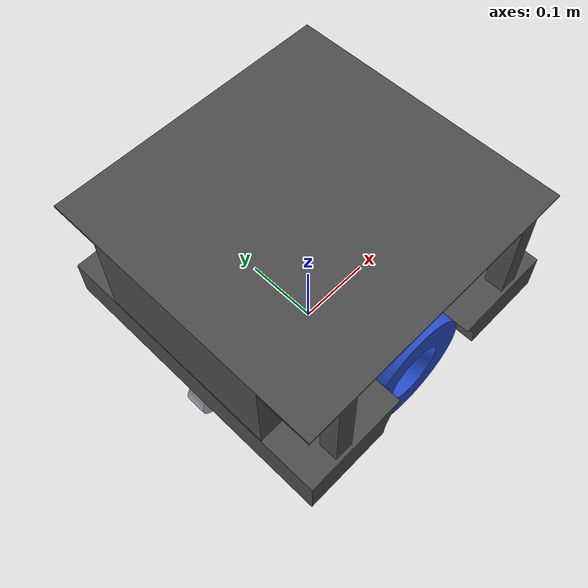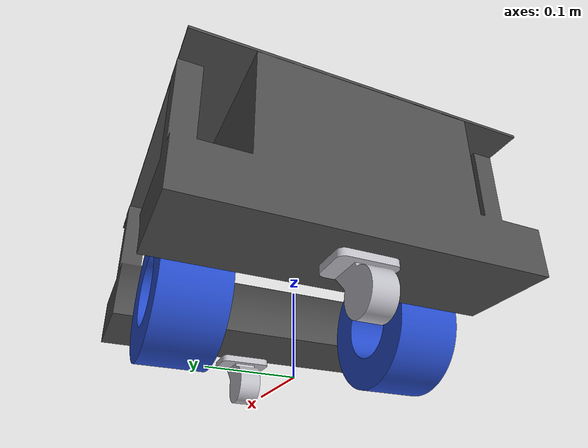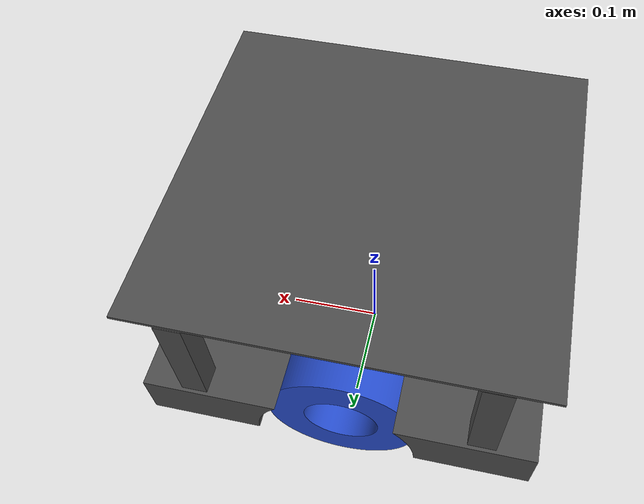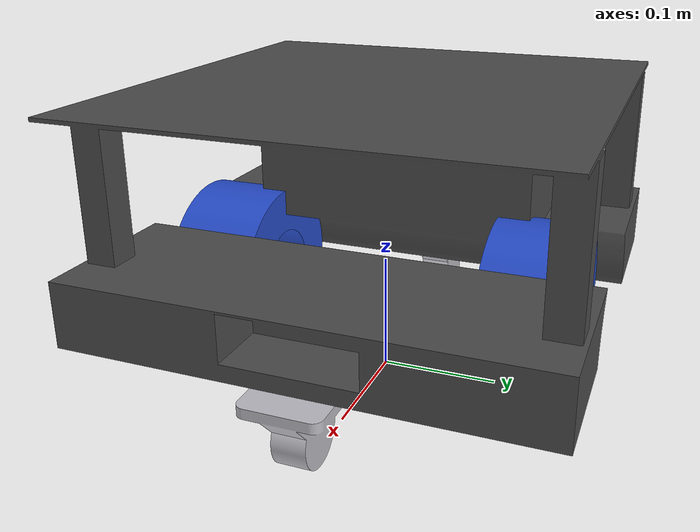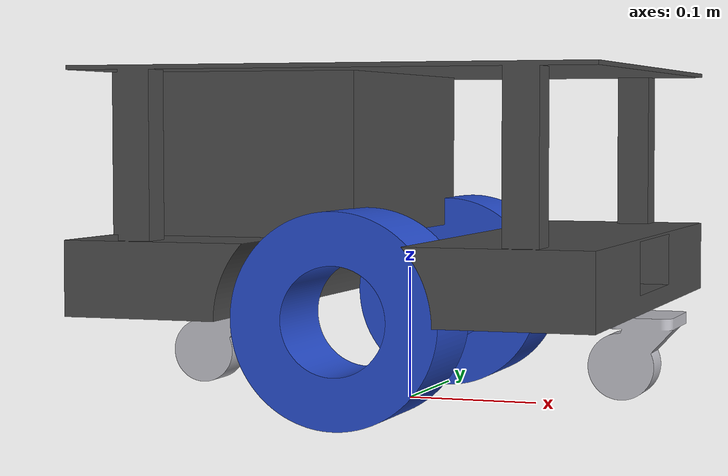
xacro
<?xml version="1.0"?>
<robot name="zbig" xmlns:xacro="http://ros.org/wiki/xacro">

    <xacro:property name="wheel_radius" value="0.074"/>
    <xacro:property name="wheel_offset_y" value="0.147"/>
    <xacro:property name="wheel_offset_z" value="0.0"/>

    <xacro:property name="caster_wheel_radius" value="0.0315"/>
    <xacro:property name="caster_wheel_offset_x" value="0.168"/>
    <xacro:property name="caster_wheel_offset_y" value="0.0"/>
    <xacro:property name="caster_wheel_offset_z" value="${wheel_offset_z - wheel_radius + caster_wheel_radius}"/>

    <xacro:property name="chassis_mass" value="15.0"/>
    <xacro:property name="wheel_mass" value="0.08"/>
    <xacro:property name="caster_wheel_mass" value="0.03"/>

  <!-- BASE_FOOTPRINT LINK -->

  <link name="base_footprint"></link>

   <!-- JOINTS -->

   <joint name="base_joint" type="fixed">
    <parent link="base_footprint"/>
    <child link="base_link" />
    <origin xyz="0 0 ${wheel_radius}" rpy="0 0 0"/>
  </joint>

  <joint name="wheel_right_joint" type="continuous">
    <origin xyz="0 ${-wheel_offset_y} 0" rpy="0 0 0" />
    <parent link="base_link" />
    <child link="wheel_right_link" />
    <axis xyz="0 1 0" />
  </joint>

  <joint name="wheel_left_joint" type="continuous">
    <origin xyz="0 ${wheel_offset_y}  0" rpy="0 0 0" />
    <parent link="base_link" />
    <child link="wheel_left_link" />
    <axis xyz="0 1 0" />
  </joint>

  <joint name="caster_rear_joint" type="fixed">
    <origin xyz="${-caster_wheel_offset_x} ${-caster_wheel_offset_y} ${caster_wheel_offset_z}" rpy="1.57 0 1.57" />
    <parent link="base_link" />
    <child link="caster_rear_link" />
    <axis xyz="0 0 0" />
  </joint>

  <joint name="caster_front_joint" type="fixed">
    <origin xyz="${caster_wheel_offset_x} ${caster_wheel_offset_y} ${caster_wheel_offset_z}" rpy="1.57 0 1.57" />
    <parent link="base_link" />
    <child link="caster_front_link" />
    <axis xyz="0 0 0" />
  </joint>

<!-- LINKS -->

   <!-- BASE LINK -->

  <link name="base_link">
    <inertial>
      <origin xyz="-0.070489 -0.000718 0.040699" rpy="0.0 0.0 0.0" />
      <mass value="${chassis_mass}"/>
      <inertia ixx="0.011114" ixy="0.000188" ixz="-0.005821"
               iyy="0.017229" iyz="0.000127"
               izz="0.019734" />
    </inertial>
    <visual name='base_link_visual'>
      <origin xyz="0 0 0" rpy="0 0 0" />
      <geometry>
        <mesh filename="file://$(find zbig_description)/meshes/cbot/collision-chassis-center_short.stl" />
      </geometry>
      <material name="dark_grey"/>
    </visual>
    <collision>
      <origin xyz="0 0 0" rpy="0 0 0" />
      <geometry>
        <mesh filename="file://$(find zbig_description)/meshes/cbot/collision-chassis-center_short.stl" />
      </geometry>
    </collision>
  </link>

<!-- RIGHT WHEEL LINK -->

  <link name="wheel_right_link">
    <inertial>
      <origin xyz="0 -0.014 0" rpy="0 0 0" />
      <mass value="${wheel_mass}" />
      <inertia ixx="1.88176298336665E-05" ixy="-4.8444933029987E-10" ixz="1.88163708851143E-08"
               iyy="3.11510738647764E-05" iyz="-6.93560663069607E-11"
               izz="1.8801969558182E-05" />
    </inertial>
    <visual>
      <origin xyz="-0.0 0.014 0.0" rpy="1.57 0 0" />
      <geometry>
        <mesh filename="file://$(find zbig_description)/meshes/cbot/collision-6inch-wheel.stl" />
      </geometry>
      <material name="blue"/>
    </visual>
    <collision>
      <origin xyz="0 0 0" rpy="1.57 0 0" />
      <geometry>
        <sphere radius="${wheel_radius}"/>
      </geometry>
    </collision>
  </link>

  <!-- LEFT WHEEL LINK -->

  <link
    name="wheel_left_link">
    <inertial>
      <origin xyz="0 -0.014 0" rpy="0 0 0" />
      <mass value="${wheel_mass}" />
      <inertia ixx="1.8792911368909E-05"  ixy="3.31256392204584E-10" ixz="-1.14082001662767E-08"
               iyy="3.11510738759073E-05" iyz="-3.60499245082192E-10"
               izz="1.88266886146847E-05" />
    </inertial>
    <visual>
      <origin xyz="0 -0.014 0" rpy="-1.57 0 0" />
      <geometry>
        <mesh filename="file://$(find zbig_description)/meshes/cbot/collision-6inch-wheel.stl" />
      </geometry>
      <material name="blue"/>
    </visual>
    <collision>
      <origin xyz="0 0 0" rpy="-1.57 0 0" />
      <geometry>
        <sphere radius="${wheel_radius}"/>
      </geometry>
    </collision>
  </link>

  <!-- REAR CASTER WHEEL LINK -->

  <link name="caster_rear_link">
    <inertial>
      <origin xyz=".000112 -0.0155 -.00818" rpy="0 0 0" />
      <mass value="0.027976" />
      <inertia ixx="0.000019" ixy="0" ixz="0"
               iyy="0.000007"  iyz="0.000006"
               izz="0.000014" />
    </inertial>
    <visual>
      <origin xyz="0 0 0" rpy="0 0 0" />
      <geometry>
        <mesh filename="file://$(find zbig_description)/meshes/cbot/visual-caster-2inch.stl" />
      </geometry>
      <material name="silver"/>
    </visual>
    <collision>
      <origin xyz="0 0 0" rpy="0 0 0" />
      <geometry>
        <sphere radius="${caster_wheel_radius}"/>
      </geometry>
    </collision>
  </link>

  <!-- FRONT CASTER WHEEL LINK -->

  <link name="caster_front_link">
    <inertial>
      <origin xyz=".000112 -0.0155 -.00818" rpy="0 0 0" />
      <mass value="0.027976" />
      <inertia ixx="0.000019" ixy="0" ixz="0"
               iyy="0.000007"  iyz="0.000006"
               izz="0.000014" />
    </inertial>
    <visual>
      <origin xyz="0 0 0" rpy="0 0 0" />
      <geometry>
        <mesh filename="file://$(find zbig_description)/meshes/cbot/visual-caster-2inch.stl" />
      </geometry>
      <material name="silver"/>
    </visual>
    <collision>
      <origin xyz="0 0 0" rpy="0 0 0" />
      <geometry>
        <sphere radius="${caster_wheel_radius}"/>
      </geometry>
    </collision>
  </link>

    <!-- Wheels -->
  <gazebo reference="wheel_left_link">
    <mu1>1000000000000000.0</mu1>
    <mu2>1000000000000000.0</mu2>
    <kp>1000000000000.0</kp>
    <kd>10.0</kd>
    <minDepth>0.001</minDepth>
    <maxVel>0.1</maxVel>
    <fdir1>1 0 0</fdir1>
  </gazebo>

  <gazebo reference="wheel_right_link">
    <mu1>1000000000000000.0</mu1>
    <mu2>1000000000000000.0</mu2>
    <kp>1000000000000.0</kp>
    <kd>10.0</kd>
    <minDepth>0.001</minDepth>
    <maxVel>0.1</maxVel>
    <fdir1>1 0 0</fdir1>
  </gazebo>

  <!-- Caster Wheels -->
  <gazebo reference="caster_rear_link">
    <mu1>0.1</mu1>
    <mu2>0.1</mu2>
    <kp>1000000.0</kp>
    <kd>100.0</kd>
    <minDepth>0.001</minDepth>
    <maxVel>1.0</maxVel>
  </gazebo>

  <gazebo reference="caster_front_link">
    <mu1>0.1</mu1>
    <mu2>0.1</mu2>
    <kp>1000000.0</kp>
    <kd>100.0</kd>
    <minDepth>0.001</minDepth>
    <maxVel>1.0</maxVel>
  </gazebo>

</robot>
